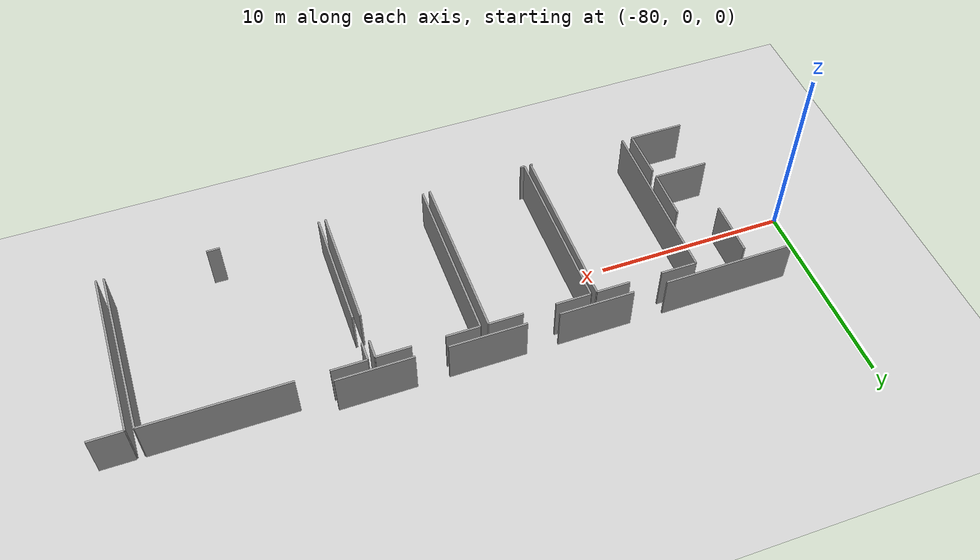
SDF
<sdf version="1.6">
 <world name="default">
  <model name="ground_plane">
   <static>1</static>
   <link name="link">
    <collision name="collision">
     <geometry><plane><normal>0 0 1</normal><size>100 100</size></plane></geometry>
     <surface><friction><ode><mu>100</mu><mu2>50</mu2></ode></friction></surface>
    </collision>
    <visual name="visual">
     <cast_shadows>0</cast_shadows>
     <geometry><plane><normal>0 0 1</normal><size>100 100</size></plane></geometry>
     <material>
      <script><uri>file://media/materials/scripts/gazebo.material</uri><name>Gazebo/Grey</name></script>
     </material>
    </visual>
   </link>
  </model>
  <model name="50015850_PLAN4">
   <static>1</static>
   <link name="Wall_19">
    <collision name="Wall_19_Collision">
     <geometry><box><size>3.92132478904 0.1 2.5</size></box></geometry>
     <pose>1.96066239452 0 1.25 0 0 0</pose>
    </collision>
    <visual name="Wall_19_Visual">
     <pose>1.96066239452 0 1.25 0 0 0</pose>
     <geometry><box><size>3.92132478904 0.1 2.5</size></box></geometry>
     <material>
      <script><uri>file://media/materials/scripts/gazebo.material</uri><name>Gazebo/Grey</name></script>
      <ambient>1 1 1 1</ambient>
     </material>
    </visual>
    <pose>31.8890933316 -2.85164646913 0 0 0 3.14159265359</pose>
   </link>
   <link name="Wall_20">
    <collision name="Wall_20_Collision">
     <geometry><box><size>3.97817397373 0.1 2.5</size></box></geometry>
     <pose>1.98908698687 0 1.25 0 0 0</pose>
    </collision>
    <visual name="Wall_20_Visual">
     <pose>1.98908698687 0 1.25 0 0 0</pose>
     <geometry><box><size>3.97817397373 0.1 2.5</size></box></geometry>
     <material>
      <script><uri>file://media/materials/scripts/gazebo.material</uri><name>Gazebo/Grey</name></script>
      <ambient>1 1 1 1</ambient>
     </material>
    </visual>
    <pose>26.3490895248 -2.85164646913 0 0 0 3.14159265359</pose>
   </link>
   <link name="Wall_21">
    <collision name="Wall_21_Collision">
     <geometry><box><size>3.88807816763 0.1 2.5</size></box></geometry>
     <pose>1.94403908381 0 1.25 0 0 0</pose>
    </collision>
    <visual name="Wall_21_Visual">
     <pose>1.94403908381 0 1.25 0 0 0</pose>
     <geometry><box><size>3.88807816763 0.1 2.5</size></box></geometry>
     <material>
      <script><uri>file://media/materials/scripts/gazebo.material</uri><name>Gazebo/Grey</name></script>
      <ambient>1 1 1 1</ambient>
     </material>
    </visual>
    <pose>20.7253346869 -2.85164646913 0 0 0 3.14159265359</pose>
   </link>
   <link name="Wall_22">
    <collision name="Wall_22_Collision">
     <geometry><box><size>6.89207662407 0.1 2.5</size></box></geometry>
     <pose>3.44603831203 0 1.25 0 0 0</pose>
    </collision>
    <visual name="Wall_22_Visual">
     <pose>3.44603831203 0 1.25 0 0 0</pose>
     <geometry><box><size>6.89207662407 0.1 2.5</size></box></geometry>
     <material>
      <script><uri>file://media/materials/scripts/gazebo.material</uri><name>Gazebo/Grey</name></script>
      <ambient>1 1 1 1</ambient>
     </material>
    </visual>
    <pose>15.0866061798 -2.85164646913 0 0 0 -3.13549462931</pose>
   </link>
   <link name="Wall_39">
    <collision name="Wall_39_Collision">
     <geometry><box><size>2.86852940843 0.1 2.5</size></box></geometry>
     <pose>1.43426470421 0 1.25 0 0 0</pose>
    </collision>
    <visual name="Wall_39_Visual">
     <pose>1.43426470421 0 1.25 0 0 0</pose>
     <geometry><box><size>2.86852940843 0.1 2.5</size></box></geometry>
     <material>
      <script><uri>file://media/materials/scripts/gazebo.material</uri><name>Gazebo/Grey</name></script>
      <ambient>1 1 1 1</ambient>
     </material>
    </visual>
    <pose>10.5427320601 -3.46241989721 0 0 0 -1.57707804023</pose>
   </link>
   <link name="Wall_47">
    <collision name="Wall_47_Collision">
     <geometry><box><size>2.84575851786 0.1 2.5</size></box></geometry>
     <pose>1.42287925893 0 1.25 0 0 0</pose>
    </collision>
    <visual name="Wall_47_Visual">
     <pose>1.42287925893 0 1.25 0 0 0</pose>
     <geometry><box><size>2.84575851786 0.1 2.5</size></box></geometry>
     <material>
      <script><uri>file://media/materials/scripts/gazebo.material</uri><name>Gazebo/Grey</name></script>
      <ambient>1 1 1 1</ambient>
     </material>
    </visual>
    <pose>12.6248334497 -9.42300615443 0 0 0 3.14159265359</pose>
   </link>
   <link name="Wall_51">
    <collision name="Wall_51_Collision">
     <geometry><box><size>2.62131014812 0.1 2.5</size></box></geometry>
     <pose>1.31065507406 0 1.25 0 0 0</pose>
    </collision>
    <visual name="Wall_51_Visual">
     <pose>1.31065507406 0 1.25 0 0 0</pose>
     <geometry><box><size>2.62131014812 0.1 2.5</size></box></geometry>
     <material>
      <script><uri>file://media/materials/scripts/gazebo.material</uri><name>Gazebo/Grey</name></script>
      <ambient>1 1 1 1</ambient>
     </material>
    </visual>
    <pose>12.6418374469 -6.80175115792 0 0 0 -1.57728320378</pose>
   </link>
   <link name="Wall_52">
    <collision name="Wall_52_Collision">
     <geometry><box><size>2.86580800711 0.1 2.5</size></box></geometry>
     <pose>1.43290400355 0 1.25 0 0 0</pose>
    </collision>
    <visual name="Wall_52_Visual">
     <pose>1.43290400355 0 1.25 0 0 0</pose>
     <geometry><box><size>2.86580800711 0.1 2.5</size></box></geometry>
     <material>
      <script><uri>file://media/materials/scripts/gazebo.material</uri><name>Gazebo/Grey</name></script>
      <ambient>1 1 1 1</ambient>
     </material>
    </visual>
    <pose>12.653258042 -12.4643106402 0 0 0 3.14159265359</pose>
   </link>
   <link name="Wall_56">
    <collision name="Wall_56_Collision">
     <geometry><box><size>2.60011491629 0.1 2.5</size></box></geometry>
     <pose>1.30005745814 0 1.25 0 0 0</pose>
    </collision>
    <visual name="Wall_56_Visual">
     <pose>1.30005745814 0 1.25 0 0 0</pose>
     <geometry><box><size>2.60011491629 0.1 2.5</size></box></geometry>
     <material>
      <script><uri>file://media/materials/scripts/gazebo.material</uri><name>Gazebo/Grey</name></script>
      <ambient>1 1 1 1</ambient>
     </material>
    </visual>
    <pose>12.6228031216 -9.86437408794 0 0 0 -1.55908314574</pose>
   </link>
   <link name="Wall_57">
    <collision name="Wall_57_Collision">
     <geometry><box><size>0.104815684284 0.1 2.5</size></box></geometry>
     <pose>0.052407842142 0 1.25 0 0 0</pose>
    </collision>
    <visual name="Wall_57_Visual">
     <pose>0.052407842142 0 1.25 0 0 0</pose>
     <geometry><box><size>0.104815684284 0.1 2.5</size></box></geometry>
     <material>
      <script><uri>file://media/materials/scripts/gazebo.material</uri><name>Gazebo/Grey</name></script>
      <ambient>1 1 1 1</ambient>
     </material>
    </visual>
    <pose>18.528519764 -12.450098344 0 0 0 3.14159265359</pose>
   </link>
   <link name="Wall_58">
    <collision name="Wall_58_Collision">
     <geometry><box><size>8.98016623311 0.1 2.5</size></box></geometry>
     <pose>4.49008311655 0 1.25 0 0 0</pose>
    </collision>
    <visual name="Wall_58_Visual">
     <pose>4.49008311655 0 1.25 0 0 0</pose>
     <geometry><box><size>8.98016623311 0.1 2.5</size></box></geometry>
     <material>
      <script><uri>file://media/materials/scripts/gazebo.material</uri><name>Gazebo/Grey</name></script>
      <ambient>1 1 1 1</ambient>
     </material>
    </visual>
    <pose>13.223780217 -12.450098344 0 0 0 1.57079632679</pose>
   </link>
   <link name="Wall_59">
    <collision name="Wall_59_Collision">
     <geometry><box><size>1.8691707379 0.1 2.5</size></box></geometry>
     <pose>0.934585368949 0 1.25 0 0 0</pose>
    </collision>
    <visual name="Wall_59_Visual">
     <pose>0.934585368949 0 1.25 0 0 0</pose>
     <geometry><box><size>1.8691707379 0.1 2.5</size></box></geometry>
     <material>
      <script><uri>file://media/materials/scripts/gazebo.material</uri><name>Gazebo/Grey</name></script>
      <ambient>1 1 1 1</ambient>
     </material>
    </visual>
    <pose>13.223780217 -3.46993211091 0 0 0 0.0</pose>
   </link>
   <link name="Wall_60">
    <collision name="Wall_60_Collision">
     <geometry><box><size>1.75217308546 0.1 2.5</size></box></geometry>
     <pose>0.876086542732 0 1.25 0 0 0</pose>
    </collision>
    <visual name="Wall_60_Visual">
     <pose>0.876086542732 0 1.25 0 0 0</pose>
     <geometry><box><size>1.75217308546 0.1 2.5</size></box></geometry>
     <material>
      <script><uri>file://media/materials/scripts/gazebo.material</uri><name>Gazebo/Grey</name></script>
      <ambient>1 1 1 1</ambient>
     </material>
    </visual>
    <pose>16.7872596916 -3.46993211091 0 0 0 0.0</pose>
   </link>
   <link name="Wall_61">
    <collision name="Wall_61_Collision">
     <geometry><box><size>8.98017286404 0.1 2.5</size></box></geometry>
     <pose>4.49008643202 0 1.25 0 0 0</pose>
    </collision>
    <visual name="Wall_61_Visual">
     <pose>4.49008643202 0 1.25 0 0 0</pose>
     <geometry><box><size>8.98017286404 0.1 2.5</size></box></geometry>
     <material>
      <script><uri>file://media/materials/scripts/gazebo.material</uri><name>Gazebo/Grey</name></script>
      <ambient>1 1 1 1</ambient>
     </material>
    </visual>
    <pose>18.5394327771 -3.46993211091 0 0 0 -1.57201156129</pose>
   </link>
   <link name="Wall_62">
    <collision name="Wall_62_Collision">
     <geometry><box><size>0.230442230823 0.1 2.5</size></box></geometry>
     <pose>0.115221115411 0 1.25 0 0 0</pose>
    </collision>
    <visual name="Wall_62_Visual">
     <pose>0.115221115411 0 1.25 0 0 0</pose>
     <geometry><box><size>0.230442230823 0.1 2.5</size></box></geometry>
     <material>
      <script><uri>file://media/materials/scripts/gazebo.material</uri><name>Gazebo/Grey</name></script>
      <ambient>1 1 1 1</ambient>
     </material>
    </visual>
    <pose>19.0939661189 -12.4643106402 0 0 0 3.14159265359</pose>
   </link>
   <link name="Wall_63">
    <collision name="Wall_63_Collision">
     <geometry><box><size>9.00755028234 0.1 2.5</size></box></geometry>
     <pose>4.50377514117 0 1.25 0 0 0</pose>
    </collision>
    <visual name="Wall_63_Visual">
     <pose>4.50377514117 0 1.25 0 0 0</pose>
     <geometry><box><size>9.00755028234 0.1 2.5</size></box></geometry>
     <material>
      <script><uri>file://media/materials/scripts/gazebo.material</uri><name>Gazebo/Grey</name></script>
      <ambient>1 1 1 1</ambient>
     </material>
    </visual>
    <pose>18.8635238881 -12.4643106402 0 0 0 1.57079632679</pose>
   </link>
   <link name="Wall_64">
    <collision name="Wall_64_Collision">
     <geometry><box><size>1.82374214834 0.1 2.5</size></box></geometry>
     <pose>0.91187107417 0 1.25 0 0 0</pose>
    </collision>
    <visual name="Wall_64_Visual">
     <pose>0.91187107417 0 1.25 0 0 0</pose>
     <geometry><box><size>1.82374214834 0.1 2.5</size></box></geometry>
     <material>
      <script><uri>file://media/materials/scripts/gazebo.material</uri><name>Gazebo/Grey</name></script>
      <ambient>1 1 1 1</ambient>
     </material>
    </visual>
    <pose>18.8635238881 -3.45676035785 0 0 0 0.0</pose>
   </link>
   <link name="Wall_65">
    <collision name="Wall_65_Collision">
     <geometry><box><size>1.76714675465 0.1 2.5</size></box></geometry>
     <pose>0.883573377324 0 1.25 0 0 0</pose>
    </collision>
    <visual name="Wall_65_Visual">
     <pose>0.883573377324 0 1.25 0 0 0</pose>
     <geometry><box><size>1.76714675465 0.1 2.5</size></box></geometry>
     <material>
      <script><uri>file://media/materials/scripts/gazebo.material</uri><name>Gazebo/Grey</name></script>
      <ambient>1 1 1 1</ambient>
     </material>
    </visual>
    <pose>22.364824567 -3.45676035785 0 0 0 0.0</pose>
   </link>
   <link name="Wall_66">
    <collision name="Wall_66_Collision">
     <geometry><box><size>9.00755491596 0.1 2.5</size></box></geometry>
     <pose>4.50377745798 0 1.25 0 0 0</pose>
    </collision>
    <visual name="Wall_66_Visual">
     <pose>4.50377745798 0 1.25 0 0 0</pose>
     <geometry><box><size>9.00755491596 0.1 2.5</size></box></geometry>
     <material>
      <script><uri>file://media/materials/scripts/gazebo.material</uri><name>Gazebo/Grey</name></script>
      <ambient>1 1 1 1</ambient>
     </material>
    </visual>
    <pose>24.1319713216 -3.45676035785 0 0 0 -1.56978201406</pose>
   </link>
   <link name="Wall_67">
    <collision name="Wall_67_Collision">
     <geometry><box><size>8.96948163188 0.1 2.5</size></box></geometry>
     <pose>4.48474081594 0 1.25 0 0 0</pose>
    </collision>
    <visual name="Wall_67_Visual">
     <pose>4.48474081594 0 1.25 0 0 0</pose>
     <geometry><box><size>8.96948163188 0.1 2.5</size></box></geometry>
     <material>
      <script><uri>file://media/materials/scripts/gazebo.material</uri><name>Gazebo/Grey</name></script>
      <ambient>1 1 1 1</ambient>
     </material>
    </visual>
    <pose>24.5385445086 -12.4262419897 0 0 0 1.57079632679</pose>
   </link>
   <link name="Wall_68">
    <collision name="Wall_68_Collision">
     <geometry><box><size>1.73973732631 0.1 2.5</size></box></geometry>
     <pose>0.869868663156 0 1.25 0 0 0</pose>
    </collision>
    <visual name="Wall_68_Visual">
     <pose>0.869868663156 0 1.25 0 0 0</pose>
     <geometry><box><size>1.73973732631 0.1 2.5</size></box></geometry>
     <material>
      <script><uri>file://media/materials/scripts/gazebo.material</uri><name>Gazebo/Grey</name></script>
      <ambient>1 1 1 1</ambient>
     </material>
    </visual>
    <pose>24.5385445086 -3.45676035785 0 0 0 0.0</pose>
   </link>
   <link name="Wall_69">
    <collision name="Wall_69_Collision">
     <geometry><box><size>1.77476048474 0.1 2.5</size></box></geometry>
     <pose>0.88738024237 0 1.25 0 0 0</pose>
    </collision>
    <visual name="Wall_69_Visual">
     <pose>0.88738024237 0 1.25 0 0 0</pose>
     <geometry><box><size>1.77476048474 0.1 2.5</size></box></geometry>
     <material>
      <script><uri>file://media/materials/scripts/gazebo.material</uri><name>Gazebo/Grey</name></script>
      <ambient>1 1 1 1</ambient>
     </material>
    </visual>
    <pose>27.9591396485 -3.45676035785 0 0 0 0.0</pose>
   </link>
   <link name="Wall_70">
    <collision name="Wall_70_Collision">
     <geometry><box><size>0.995571346996 0.1 2.5</size></box></geometry>
     <pose>0.497785673498 0 1.25 0 0 0</pose>
    </collision>
    <visual name="Wall_70_Visual">
     <pose>0.497785673498 0 1.25 0 0 0</pose>
     <geometry><box><size>0.995571346996 0.1 2.5</size></box></geometry>
     <material>
      <script><uri>file://media/materials/scripts/gazebo.material</uri><name>Gazebo/Grey</name></script>
      <ambient>1 1 1 1</ambient>
     </material>
    </visual>
    <pose>29.7339001332 -3.45676035785 0 0 0 -1.57079632679</pose>
   </link>
   <link name="Wall_71">
    <collision name="Wall_71_Collision">
     <geometry><box><size>6.44644713071 0.1 2.5</size></box></geometry>
     <pose>3.22322356535 0 1.25 0 0 0</pose>
    </collision>
    <visual name="Wall_71_Visual">
     <pose>3.22322356535 0 1.25 0 0 0</pose>
     <geometry><box><size>6.44644713071 0.1 2.5</size></box></geometry>
     <material>
      <script><uri>file://media/materials/scripts/gazebo.material</uri><name>Gazebo/Grey</name></script>
      <ambient>1 1 1 1</ambient>
     </material>
    </visual>
    <pose>29.7339001332 -5.97979823615 0 0 0 -1.56977272928</pose>
   </link>
   <link name="Wall_72">
    <collision name="Wall_72_Collision">
     <geometry><box><size>0.677368187298 0.1 2.5</size></box></geometry>
     <pose>0.338684093649 0 1.25 0 0 0</pose>
    </collision>
    <visual name="Wall_72_Visual">
     <pose>0.338684093649 0 1.25 0 0 0</pose>
     <geometry><box><size>0.677368187298 0.1 2.5</size></box></geometry>
     <material>
      <script><uri>file://media/materials/scripts/gazebo.material</uri><name>Gazebo/Grey</name></script>
      <ambient>1 1 1 1</ambient>
     </material>
    </visual>
    <pose>35.8644756043 -12.4023856354 0 0 0 3.14159265359</pose>
   </link>
   <link name="Wall_73">
    <collision name="Wall_73_Collision">
     <geometry><box><size>6.40581181397 0.1 2.5</size></box></geometry>
     <pose>3.20290590699 0 1.25 0 0 0</pose>
    </collision>
    <visual name="Wall_73_Visual">
     <pose>3.20290590699 0 1.25 0 0 0</pose>
     <geometry><box><size>6.40581181397 0.1 2.5</size></box></geometry>
     <material>
      <script><uri>file://media/materials/scripts/gazebo.material</uri><name>Gazebo/Grey</name></script>
      <ambient>1 1 1 1</ambient>
     </material>
    </visual>
    <pose>30.1018970877 -12.4023856354 0 0 0 1.57079632679</pose>
   </link>
   <link name="Wall_74">
    <collision name="Wall_74_Collision">
     <geometry><box><size>1.02087431001 0.1 2.5</size></box></geometry>
     <pose>0.510437155003 0 1.25 0 0 0</pose>
    </collision>
    <visual name="Wall_74_Visual">
     <pose>0.510437155003 0 1.25 0 0 0</pose>
     <geometry><box><size>1.02087431001 0.1 2.5</size></box></geometry>
     <material>
      <script><uri>file://media/materials/scripts/gazebo.material</uri><name>Gazebo/Grey</name></script>
      <ambient>1 1 1 1</ambient>
     </material>
    </visual>
    <pose>30.1018970877 -4.45466658207 0 0 0 1.57079632679</pose>
   </link>
   <link name="Wall_75">
    <collision name="Wall_75_Collision">
     <geometry><box><size>1.8125753442 0.1 2.5</size></box></geometry>
     <pose>0.906287672102 0 1.25 0 0 0</pose>
    </collision>
    <visual name="Wall_75_Visual">
     <pose>0.906287672102 0 1.25 0 0 0</pose>
     <geometry><box><size>1.8125753442 0.1 2.5</size></box></geometry>
     <material>
      <script><uri>file://media/materials/scripts/gazebo.material</uri><name>Gazebo/Grey</name></script>
      <ambient>1 1 1 1</ambient>
     </material>
    </visual>
    <pose>30.1018970877 -3.43379227206 0 0 0 0.0</pose>
   </link>
   <link name="Wall_76">
    <collision name="Wall_76_Collision">
     <geometry><box><size>7.3307531248 0.1 2.5</size></box></geometry>
     <pose>3.6653765624 0 1.25 0 0 0</pose>
    </collision>
    <visual name="Wall_76_Visual">
     <pose>3.6653765624 0 1.25 0 0 0</pose>
     <geometry><box><size>7.3307531248 0.1 2.5</size></box></geometry>
     <material>
      <script><uri>file://media/materials/scripts/gazebo.material</uri><name>Gazebo/Grey</name></script>
      <ambient>1 1 1 1</ambient>
     </material>
    </visual>
    <pose>33.5737580103 -3.43379227206 0 0 0 0.0</pose>
   </link>
   <link name="Wall_77">
    <collision name="Wall_77_Collision">
     <geometry><box><size>8.96863145869 0.1 2.5</size></box></geometry>
     <pose>4.48431572934 0 1.25 0 0 0</pose>
    </collision>
    <visual name="Wall_77_Visual">
     <pose>4.48431572934 0 1.25 0 0 0</pose>
     <geometry><box><size>8.96863145869 0.1 2.5</size></box></geometry>
     <material>
      <script><uri>file://media/materials/scripts/gazebo.material</uri><name>Gazebo/Grey</name></script>
      <ambient>1 1 1 1</ambient>
     </material>
    </visual>
    <pose>40.9045111351 -3.43379227206 0 0 0 -1.56788166691</pose>
   </link>
   <link name="Wall_79">
    <collision name="Wall_79_Collision">
     <geometry><box><size>8.96222320919 0.1 2.5</size></box></geometry>
     <pose>4.48111160459 0 1.25 0 0 0</pose>
    </collision>
    <visual name="Wall_79_Visual">
     <pose>4.48111160459 0 1.25 0 0 0</pose>
     <geometry><box><size>8.96222320919 0.1 2.5</size></box></geometry>
     <material>
      <script><uri>file://media/materials/scripts/gazebo.material</uri><name>Gazebo/Grey</name></script>
      <ambient>1 1 1 1</ambient>
     </material>
    </visual>
    <pose>41.3219973352 -12.4117759025 0 0 0 1.57079632679</pose>
   </link>
   <link name="Wall_80">
    <collision name="Wall_80_Collision">
     <geometry><box><size>1.74252902735 0.1 2.5</size></box></geometry>
     <pose>0.871264513673 0 1.25 0 0 0</pose>
    </collision>
    <visual name="Wall_80_Visual">
     <pose>0.871264513673 0 1.25 0 0 0</pose>
     <geometry><box><size>1.74252902735 0.1 2.5</size></box></geometry>
     <material>
      <script><uri>file://media/materials/scripts/gazebo.material</uri><name>Gazebo/Grey</name></script>
      <ambient>1 1 1 1</ambient>
     </material>
    </visual>
    <pose>41.3219973352 -3.44955269336 0 0 0 0.0</pose>
   </link>
   <pose>-86.8 6.31404733202 0 0 0 0</pose>
  </model>
 </world>
</sdf>
